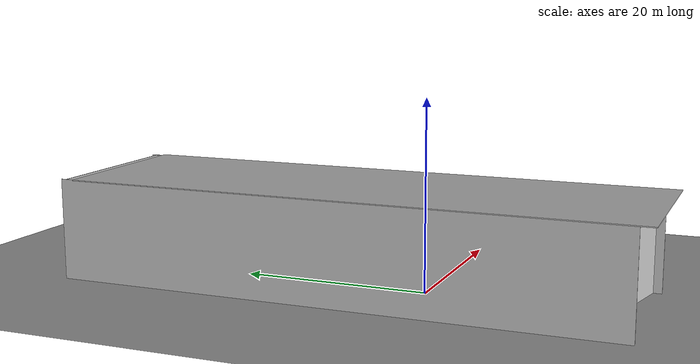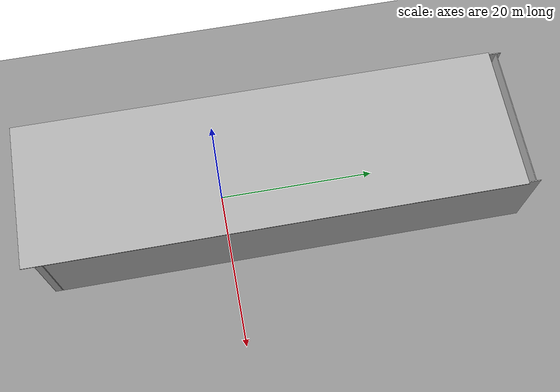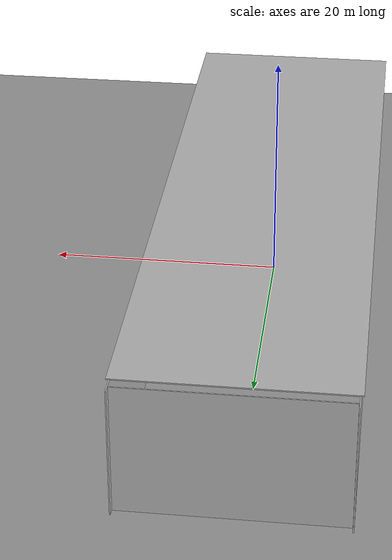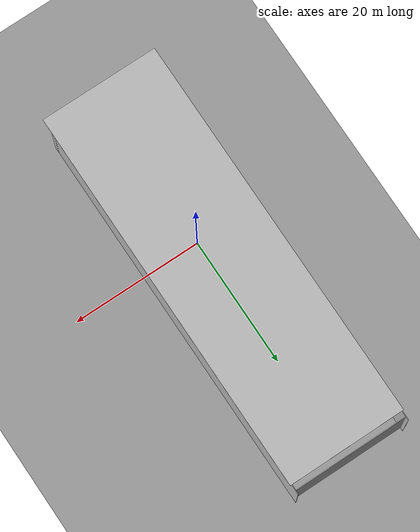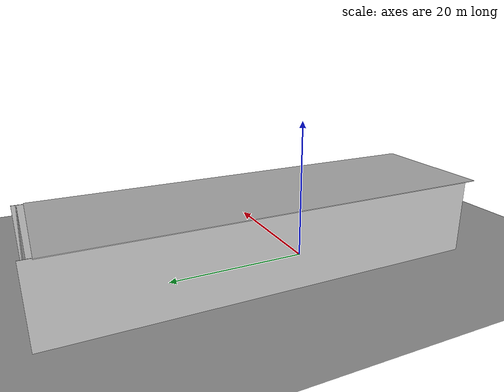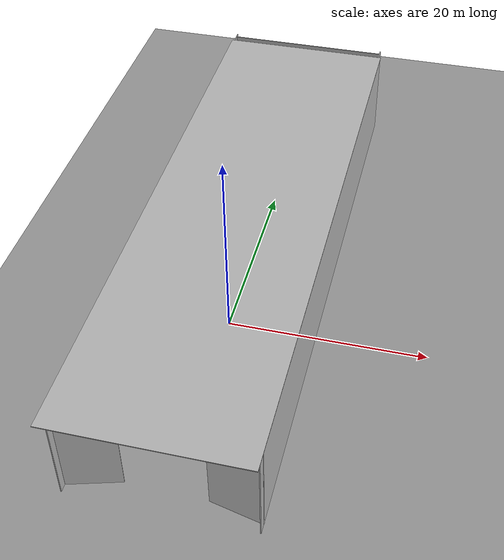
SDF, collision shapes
<?xml version='1.0'?>
<sdf version="1.4">
<model name="hangar">
  <static>true</static>

  <!-- Ground (industrial concrete floor) + original hangar mesh, scaled anisotropically:
       x1.3 width, x3.0 length (Y), x1.8 height, from the original dimensions -->
  <link name="hangar">
    <pose>0 0 0 0 0 0</pose>
    <collision name="collision">
      <geometry>
        <plane>
          <size>100 100</size>
        </plane>
      </geometry>
    </collision>
    <visual name="visual">
      <cast_shadows>false</cast_shadows>
      <geometry>
        <plane>
          <size>100 100</size>
        </plane>
      </geometry>
      <material>
        <ambient>0.6 0.6 0.6 1</ambient>
        <diffuse>0.6 0.6 0.6 1</diffuse>
        <specular>0.1 0.1 0.1 1</specular>
        <pbr>
          <metal>
            <albedo_map>model://hangar/materials/textures/concrete_floor.jpg</albedo_map>
          </metal>
        </pbr>
      </material>
    </visual>
    <visual name="visual_mesh">
      <cast_shadows>false</cast_shadows>
      <geometry>
        <mesh>
          <uri>model://hangar/meshes/hangar.dae</uri>
          <scale>1.3 3 1.8</scale>
        </mesh>
      </geometry>
    </visual>
  </link>

  <!-- Invisible collision, recomputed for the (1.3, 3, 1.8) scale of the mesh above:
       position = original_position * (sx, sy, sz); axis-aligned sizes scaled the same way -->
  <link name="roof">
    <collision name="collision2">
      <pose>0 6 10.8 0 1.57 0</pose>
      <geometry>
        <box>
          <size>0.1 60 18.2</size>
        </box>
      </geometry>
    </collision>
  </link>

  <link name="hangar_wall5">
    <collision name="collision2">
      <pose>-6.37 -21.0 5.4 0 0 1.85</pose>
      <geometry>
        <box>
          <size>0.1 5.2 10.8</size>
        </box>
      </geometry>
    </collision>
  </link>

  <link name="hangar_wall4">
    <collision name="collision2">
      <pose>6.37 -21.0 5.4 0 0 1.35</pose>
      <geometry>
        <box>
          <size>0.1 5.2 10.8</size>
        </box>
      </geometry>
    </collision>
  </link>

  <link name="hangar_wall3">
    <collision name="collision2">
      <pose>0 36.9 5.4 0 0 1.57</pose>
      <geometry>
        <box>
          <size>0.1 17.55 10.8</size>
        </box>
      </geometry>
    </collision>
  </link>

  <link name="hangar_wall2">
    <collision name="collision2">
      <pose>-8.84 7.5 5.4 0 0 0</pose>
      <geometry>
        <box>
          <size>0.1 60 10.8</size>
        </box>
      </geometry>
    </collision>
  </link>

  <link name="hangar_wall1">
    <collision name="collision2">
      <pose>8.84 7.5 5.4 0 0 0</pose>
      <geometry>
        <box>
          <size>0.1 60 10.8</size>
        </box>
      </geometry>
    </collision>
  </link>
</model>
</sdf>
